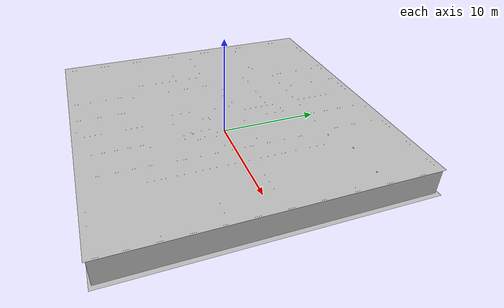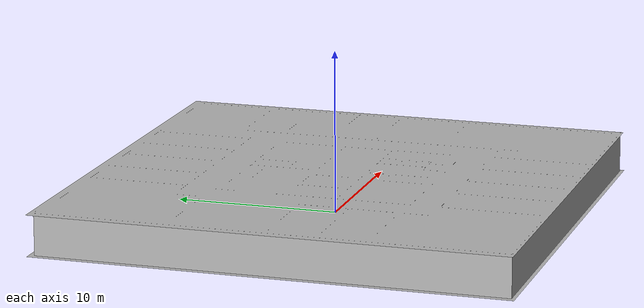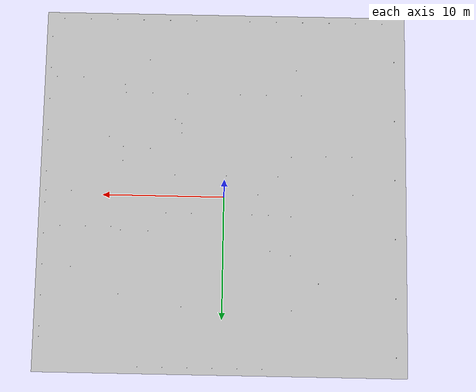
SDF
<?xml version="1.0"?>
<sdf version="1.4">
  <world name="default">
    <include>
      <uri>model://sun</uri>
    </include>
    <model name="my_mesh">
      <pose>0 0 0  0 0 0</pose>
      <static>true</static>
      <link name="body">
        <collision name="collision">
          <geometry>
            <mesh><uri>model://media/models/7thmap_new/7thmap.dae</uri></mesh>
          </geometry>
        </collision>
        <visual name="visual">
          <geometry>
            <mesh><uri>model://media/models/7thmap_new/7thmap.dae</uri></mesh>
          </geometry>
        </visual>
      </link>
    </model>
  </world>
</sdf>
